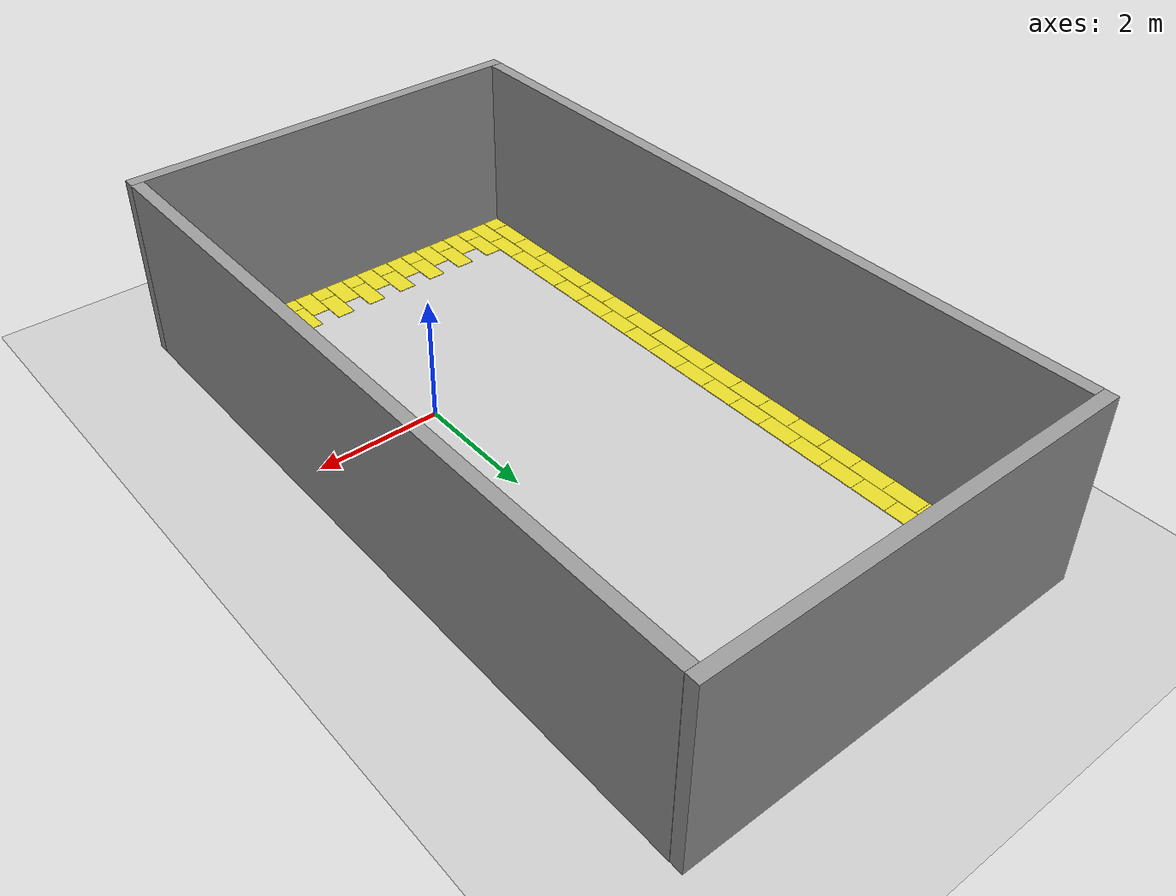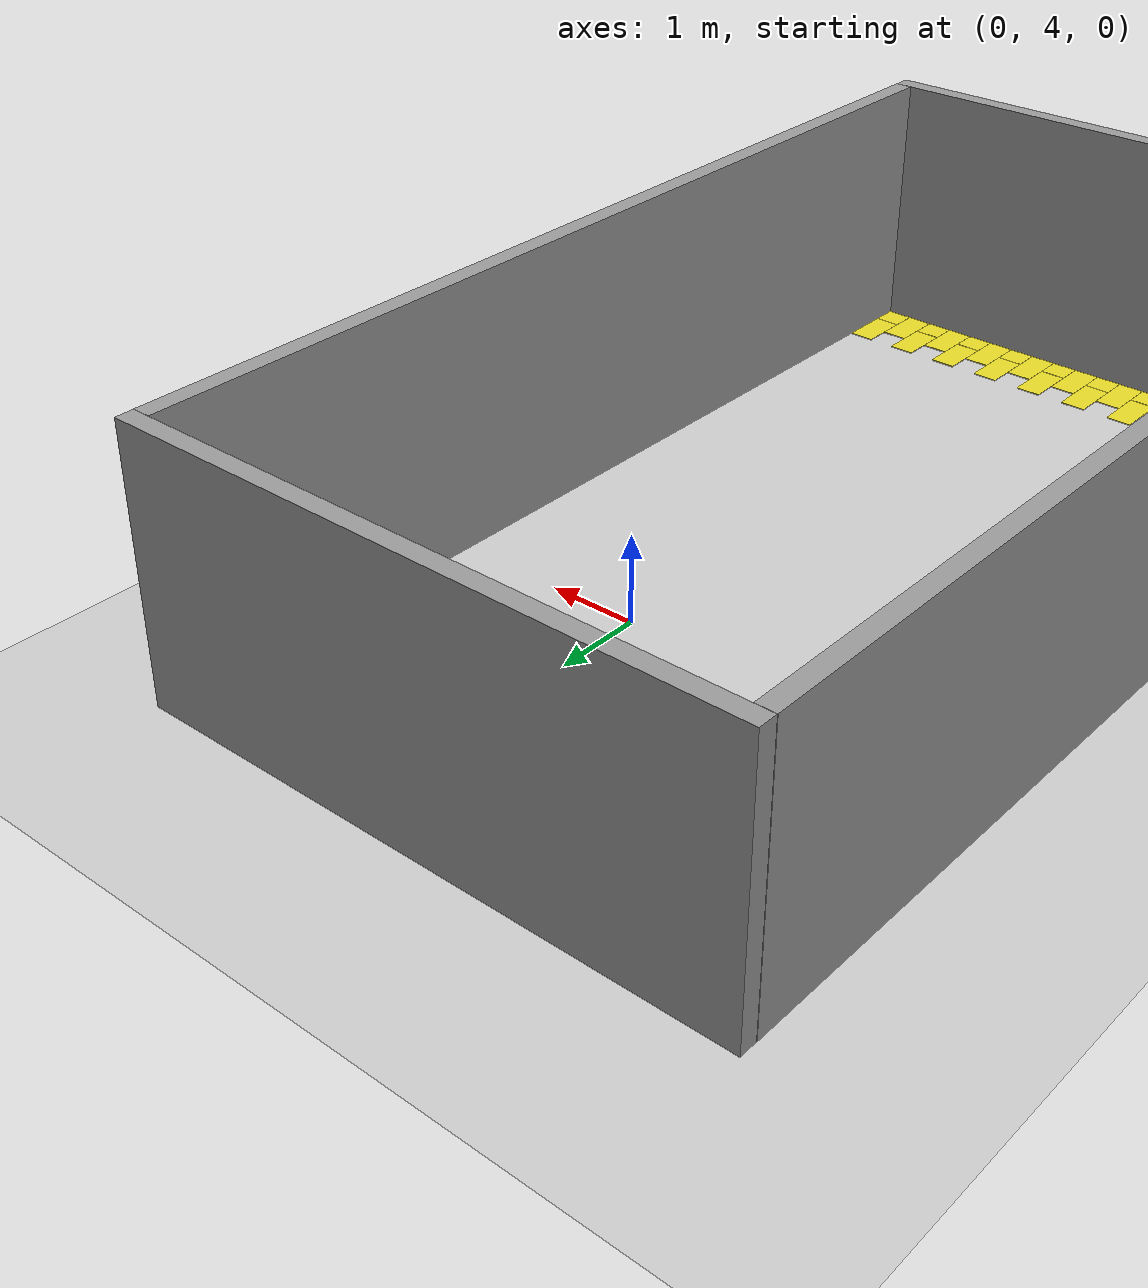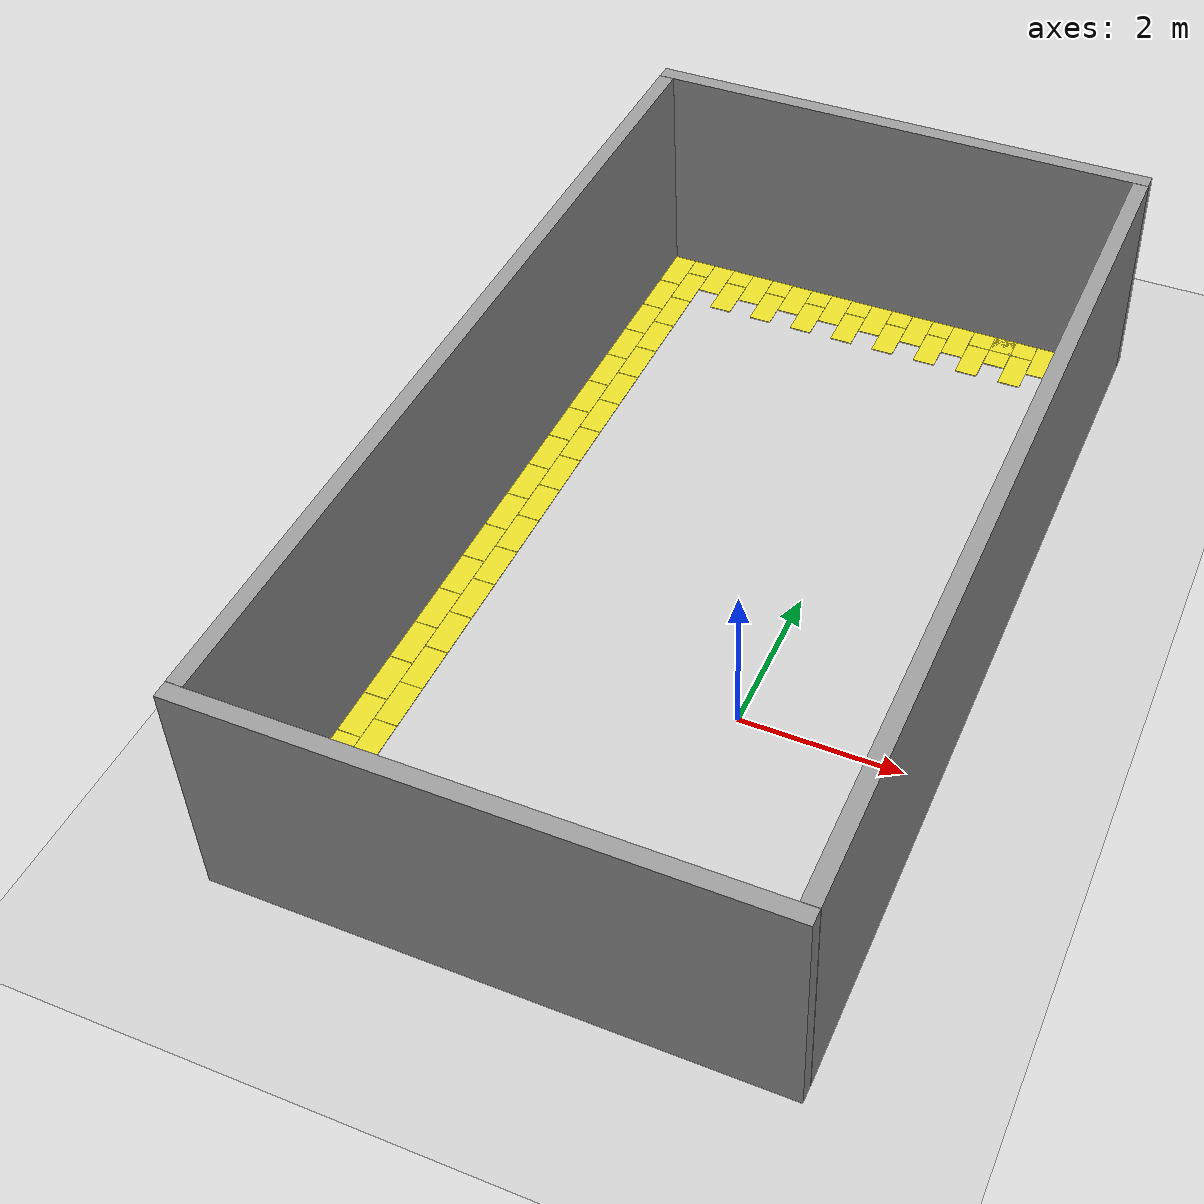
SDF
<sdf version="1.7">
 <world name="world_2">
  <shadows>false</shadows>
  <include><uri>model://sun</uri></include>
  <include><uri>model://ground_plane</uri></include>
  <include><pose>-4 -4 0 0 0 0</pose><uri>model://room_Yellow_60*30_noshadow_notexture_halb</uri></include>
 </world>
</sdf>

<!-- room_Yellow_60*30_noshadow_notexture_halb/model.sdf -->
<sdf version='1.7'>
<model  name='room_Yellow_60*30_noshadow_notexture_noshadow_notexture_halb'>
   <include><name>1</name><uri>model://Yellow_60*30_noshadow_notexture</uri><pose>0 0.603 0.005 0 0 0</pose></include>
   <include><name>2</name><uri>model://Yellow_60*30_noshadow_notexture</uri><pose>0 1.206 0.005 0 0 0</pose></include>
   <include><name>3</name><uri>model://Yellow_60*30_noshadow_notexture</uri><pose>0 1.809 0.005 0 0 0</pose></include>
   <include><name>4</name><uri>model://Yellow_60*30_noshadow_notexture</uri><pose>0 2.412 0.005 0 0 0</pose></include>
   <include><name>5</name><uri>model://Yellow_60*30_noshadow_notexture</uri><pose>0 3.015 0.005 0 0 0</pose></include>
   <include><name>6</name><uri>model://Yellow_60*30_noshadow_notexture</uri><pose>0 3.618 0.005 0 0 0</pose></include>
   <include><name>7</name><uri>model://Yellow_60*30_noshadow_notexture</uri><pose>0 4.221 0.005 0 0 0</pose></include>
   <include><name>8</name><uri>model://Yellow_60*30_noshadow_notexture</uri><pose>0 4.824 0.005 0 0 0</pose></include>
   <include><name>9</name><uri>model://Yellow_60*30_noshadow_notexture</uri><pose>0 5.427 0.005 0 0 0</pose></include>
   <include><name>10</name><uri>model://Yellow_60*30_noshadow_notexture</uri><pose>0 6.03 0.005 0 0 0</pose></include>
   <include><name>11</name><uri>model://Yellow_60*30_noshadow_notexture</uri><pose>0 6.633 0.005 0 0 0</pose></include>
   <include><name>12</name><uri>model://Yellow_60*30_noshadow_notexture</uri><pose>0 7.236 0.005 0 0 0</pose></include>
   <include><name>13</name><uri>model://Yellow_60*30_noshadow_notexture</uri><pose>0 7.839 0.005 0 0 0</pose></include>
   <include><name>14</name><uri>model://Yellow_60*30_noshadow_notexture</uri><pose>0 8.442 0.005 0 0 0</pose></include>
   <include><name>15</name><uri>model://Yellow_60*30_noshadow_notexture</uri><pose>0 9.045 0.005 0 0 0</pose></include>
   <include><name>16</name><uri>model://Yellow_60*30_noshadow_notexture</uri><pose>0 9.648 0.005 0 0 0</pose></include>
   <include><name>17</name><uri>model://Yellow_60*30_noshadow_notexture</uri><pose>0 10.251 0.005 0 0 0</pose></include>
   <include><name>18</name><uri>model://Yellow_60*30_noshadow_notexture</uri><pose>0 10.854 0.005 0 0 0</pose></include>
   <include><name>19</name><uri>model://Yellow_60*30_noshadow_notexture</uri><pose>0 11.457 0.005 0 0 0</pose></include>
   <include><name>21</name><uri>model://Yellow_60*30_noshadow_notexture</uri><pose>0.303 0.3015 0.005 0 0 0</pose></include>
   <include><name>22</name><uri>model://Yellow_60*30_noshadow_notexture</uri><pose>0.303 0.9045 0.005 0 0 0</pose></include>
   <include><name>23</name><uri>model://Yellow_60*30_noshadow_notexture</uri><pose>0.303 1.5075 0.005 0 0 0</pose></include>
   <include><name>24</name><uri>model://Yellow_60*30_noshadow_notexture</uri><pose>0.303 2.1105 0.005 0 0 0</pose></include>
   <include><name>25</name><uri>model://Yellow_60*30_noshadow_notexture</uri><pose>0.303 2.7135 0.005 0 0 0</pose></include>
   <include><name>26</name><uri>model://Yellow_60*30_noshadow_notexture</uri><pose>0.303 3.3165 0.005 0 0 0</pose></include>
   <include><name>27</name><uri>model://Yellow_60*30_noshadow_notexture</uri><pose>0.303 3.9195 0.005 0 0 0</pose></include>
   <include><name>28</name><uri>model://Yellow_60*30_noshadow_notexture</uri><pose>0.303 4.5225 0.005 0 0 0</pose></include>
   <include><name>29</name><uri>model://Yellow_60*30_noshadow_notexture</uri><pose>0.303 5.1255 0.005 0 0 0</pose></include>
   <include><name>30</name><uri>model://Yellow_60*30_noshadow_notexture</uri><pose>0.303 5.7285 0.005 0 0 0</pose></include>
   <include><name>31</name><uri>model://Yellow_60*30_noshadow_notexture</uri><pose>0.303 6.3315 0.005 0 0 0</pose></include>
   <include><name>32</name><uri>model://Yellow_60*30_noshadow_notexture</uri><pose>0.303 6.9345 0.005 0 0 0</pose></include>
   <include><name>33</name><uri>model://Yellow_60*30_noshadow_notexture</uri><pose>0.303 7.5375 0.005 0 0 0</pose></include>
   <include><name>34</name><uri>model://Yellow_60*30_noshadow_notexture</uri><pose>0.303 8.1405 0.005 0 0 0</pose></include>
   <include><name>35</name><uri>model://Yellow_60*30_noshadow_notexture</uri><pose>0.303 8.7435 0.005 0 0 0</pose></include>
   <include><name>36</name><uri>model://Yellow_60*30_noshadow_notexture</uri><pose>0.303 9.3465 0.005 0 0 0</pose></include>
   <include><name>37</name><uri>model://Yellow_60*30_noshadow_notexture</uri><pose>0.303 9.9495 0.005 0 0 0</pose></include>
   <include><name>38</name><uri>model://Yellow_60*30_noshadow_notexture</uri><pose>0.303 10.5525 0.005 0 0 0</pose></include>
   <include><name>39</name><uri>model://Yellow_60*30_noshadow_notexture</uri><pose>0.303 11.1555 0.005 0 0 0</pose></include>
   <include><name>40</name><uri>model://Yellow_60*30_noshadow_notexture</uri><pose>0.606 0.603 0.005 0 0 0</pose></include>
   <include><name>41</name><uri>model://Yellow_60*30_noshadow_notexture</uri><pose>0.909 0.3015 0.005 0 0 0</pose></include>
   <include><name>42</name><uri>model://Yellow_60*30_noshadow_notexture</uri><pose>1.212 0.603 0.005 0 0 0</pose></include>
   <include><name>43</name><uri>model://Yellow_60*30_noshadow_notexture</uri><pose>1.515 0.3015 0.005 0 0 0</pose></include>
   <include><name>44</name><uri>model://Yellow_60*30_noshadow_notexture</uri><pose>1.818 0.603 0.005 0 0 0</pose></include>
   <include><name>45</name><uri>model://Yellow_60*30_noshadow_notexture</uri><pose>2.121 0.3015 0.005 0 0 0</pose></include>
   <include><name>46</name><uri>model://Yellow_60*30_noshadow_notexture</uri><pose>2.424 0.603 0.005 0 0 0</pose></include>
   <include><name>47</name><uri>model://Yellow_60*30_noshadow_notexture</uri><pose>2.727 0.3015 0.005 0 0 0</pose></include>
   <include><name>48</name><uri>model://Yellow_60*30_noshadow_notexture</uri><pose>3.03 0.603 0.005 0 0 0</pose></include>
   <include><name>49</name><uri>model://Yellow_60*30_noshadow_notexture</uri><pose>3.333 0.3015 0.005 0 0 0</pose></include>
   <include><name>50</name><uri>model://Yellow_60*30_noshadow_notexture</uri><pose>3.636 0.603 0.005 0 0 0</pose></include>
   <include><name>51</name><uri>model://Yellow_60*30_noshadow_notexture</uri><pose>3.939 0.3015 0.005 0 0 0</pose></include>
   <include><name>52</name><uri>model://Yellow_60*30_noshadow_notexture</uri><pose>4.242 0.603 0.005 0 0 0</pose></include>
   <include><name>53</name><uri>model://Yellow_60*30_noshadow_notexture</uri><pose>4.545 0.3015 0.005 0 0 0</pose></include>
   <include><name>54</name><uri>model://Yellow_60*30_noshadow_notexture</uri><pose>4.848 0.603 0.005 0 0 0</pose></include>
   <include><name>55</name><uri>model://Yellow_60*30_noshadow_notexture</uri><pose>5.151 0.3015 0.005 0 0 0</pose></include>
   <include><name>56</name><uri>model://Yellow_60*30_noshadow_notexture</uri><pose>5.454 0.603 0.005 0 0 0</pose></include>
   <include><name>57</name><uri>model://Yellow_60*30_noshadow_notexture</uri><pose>5.757 0.3015 0.005 0 0 0</pose></include>
   <include><name>58</name><uri>model://Yellow_60*30_noshadow_notexture</uri><pose>6.06 0.603 0.005 0 0 0</pose></include>
   <include><name>59</name><uri>model://Yellow_60*30_noshadow_notexture</uri><pose>0.606 11.457 0.005 0 0 0</pose></include>
   <include><name>60</name><uri>model://Yellow_60*30_noshadow_notexture</uri><pose>0.909 11.1555 0.005 0 0 0</pose></include>
   <include><name>61</name><uri>model://Yellow_60*30_noshadow_notexture</uri><pose>1.212 11.457 0.005 0 0 0</pose></include>
   <include><name>62</name><uri>model://Yellow_60*30_noshadow_notexture</uri><pose>1.515 11.1555 0.005 0 0 0</pose></include>
   <include><name>63</name><uri>model://Yellow_60*30_noshadow_notexture</uri><pose>1.818 11.457 0.005 0 0 0</pose></include>
   <include><name>64</name><uri>model://Yellow_60*30_noshadow_notexture</uri><pose>2.121 11.1555 0.005 0 0 0</pose></include>
   <include><name>65</name><uri>model://Yellow_60*30_noshadow_notexture</uri><pose>2.424 11.457 0.005 0 0 0</pose></include>
   <include><name>66</name><uri>model://Yellow_60*30_noshadow_notexture</uri><pose>2.727 11.1555 0.005 0 0 0</pose></include>
   <include><name>67</name><uri>model://Yellow_60*30_noshadow_notexture</uri><pose>3.03 11.457 0.005 0 0 0</pose></include>
   <include><name>68</name><uri>model://Yellow_60*30_noshadow_notexture</uri><pose>3.333 11.1555 0.005 0 0 0</pose></include>
   <include><name>69</name><uri>model://Yellow_60*30_noshadow_notexture</uri><pose>3.636 11.457 0.005 0 0 0</pose></include>
   <include><name>70</name><uri>model://Yellow_60*30_noshadow_notexture</uri><pose>3.939 11.1555 0.005 0 0 0</pose></include>
   <include><name>71</name><uri>model://Yellow_60*30_noshadow_notexture</uri><pose>4.242 11.457 0.005 0 0 0</pose></include>
   <include><name>72</name><uri>model://Yellow_60*30_noshadow_notexture</uri><pose>4.545 11.1555 0.005 0 0 0</pose></include>
   <include><name>73</name><uri>model://Yellow_60*30_noshadow_notexture</uri><pose>4.848 11.457 0.005 0 0 0</pose></include>
   <include><name>74</name><uri>model://Yellow_60*30_noshadow_notexture</uri><pose>5.151 11.1555 0.005 0 0 0</pose></include>
   <include><name>75</name><uri>model://Yellow_60*30_noshadow_notexture</uri><pose>5.454 11.457 0.005 0 0 0</pose></include>
   <include><name>76</name><uri>model://Yellow_60*30_noshadow_notexture</uri><pose>5.757 11.1555 0.005 0 0 0</pose></include>
   <include><name>77</name><uri>model://Yellow_60*30_noshadow_notexture</uri><pose>6.06 11.457 0.005 0 0 0</pose></include>
   <include><name>78</name><uri>model://Yellow_30*29.85_noshadow_notexture</uri><pose>0 0.15075 0.005 0 0 0</pose></include>
   <include><name>79</name><uri>model://Yellow_30*29.85_noshadow_notexture</uri><pose>0.606 0.15075 0.005 0 0 0</pose></include>
   <include><name>80</name><uri>model://Yellow_30*29.85_noshadow_notexture</uri><pose>1.212 0.15075 0.005 0 0 0</pose></include>
   <include><name>81</name><uri>model://Yellow_30*29.85_noshadow_notexture</uri><pose>1.818 0.15075 0.005 0 0 0</pose></include>
   <include><name>82</name><uri>model://Yellow_30*29.85_noshadow_notexture</uri><pose>2.424 0.15075 0.005 0 0 0</pose></include>
   <include><name>83</name><uri>model://Yellow_30*29.85_noshadow_notexture</uri><pose>3.03 0.15075 0.005 0 0 0</pose></include>
   <include><name>84</name><uri>model://Yellow_30*29.85_noshadow_notexture</uri><pose>3.636 0.15075 0.005 0 0 0</pose></include>
   <include><name>85</name><uri>model://Yellow_30*29.85_noshadow_notexture</uri><pose>4.242 0.15075 0.005 0 0 0</pose></include>
   <include><name>86</name><uri>model://Yellow_30*29.85_noshadow_notexture</uri><pose>4.848 0.15075 0.005 0 0 0</pose></include>
   <include><name>87</name><uri>model://Yellow_30*29.85_noshadow_notexture</uri><pose>5.454 0.15075 0.005 0 0 0</pose></include>
   <include><name>88</name><uri>model://Yellow_30*29.85_noshadow_notexture</uri><pose>6.06 0.15075 0.005 0 0 0</pose></include>
   <include><name>89</name><uri>model://Yellow_30*29.85_noshadow_notexture</uri><pose>0.303 11.60775 0.005 0 0 0</pose></include>
   <include><name>90</name><uri>model://Yellow_30*29.85_noshadow_notexture</uri><pose>0.909 11.60775 0.005 0 0 0</pose></include>
   <include><name>91</name><uri>model://Yellow_30*29.85_noshadow_notexture</uri><pose>1.515 11.60775 0.005 0 0 0</pose></include>
   <include><name>92</name><uri>model://Yellow_30*29.85_noshadow_notexture</uri><pose>2.121 11.60775 0.005 0 0 0</pose></include>
   <include><name>93</name><uri>model://Yellow_30*29.85_noshadow_notexture</uri><pose>2.727 11.60775 0.005 0 0 0</pose></include>
   <include><name>94</name><uri>model://Yellow_30*29.85_noshadow_notexture</uri><pose>3.333 11.60775 0.005 0 0 0</pose></include>
   <include><name>95</name><uri>model://Yellow_30*29.85_noshadow_notexture</uri><pose>3.939 11.60775 0.005 0 0 0</pose></include>
   <include><name>96</name><uri>model://Yellow_30*29.85_noshadow_notexture</uri><pose>4.848 11.60775 0.005 0 0 0</pose></include>
   <include><name>97</name><uri>model://Yellow_30*29.85_noshadow_notexture</uri><pose>4.545 11.60775 0.005 0 0 0</pose></include>
   <include><name>98</name><uri>model://Yellow_30*29.85_noshadow_notexture</uri><pose>5.151 11.60775 0.005 0 0 0</pose></include>
   <include><name>99</name><uri>model://Yellow_30*29.85_noshadow_notexture</uri><pose>5.757 11.60775 0.005 0 0 0</pose></include>

   <include><name>100</name><uri>model://wall_03</uri><pose>3.03 -0.1015 0.005 0 0 0</pose></include>
   <include><name>101</name><uri>model://wall_03</uri><pose>3.03 11.86 0.005 0 0 0</pose></include>
   <include><name>102</name><uri>model://wall_04</uri><pose>-0.253 5.87925 0.005 0 0 0</pose></include>
   <include><name>103</name><uri>model://wall_04</uri><pose>6.313 5.87925 0.005 0 0 0</pose></include>

    <static>1</static>
    <allow_auto_disable>1</allow_auto_disable>
</model>
</sdf>

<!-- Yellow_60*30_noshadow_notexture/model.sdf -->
<sdf version='1.7'>
  <model name='Yellow_60*30_noshadow_notexture'>
    <link name='link_0'>
      <inertial>
        <mass>7.2</mass>
        <inertia>
          <ixx>0.21606</ixx>
          <ixy>0</ixy>
          <ixz>0</ixz>
          <iyy>0.21606</iyy>
          <iyz>0</iyz>
          <izz>0.432</izz>
        </inertia>
        <pose>0 0 0 0 -0 0</pose>
      </inertial>
      <pose>0 0 0 0 -0 0</pose>
      <gravity>1</gravity>
      <self_collide>0</self_collide>
      <kinematic>0</kinematic>
      <enable_wind>0</enable_wind>
      <visual name='visual'>
        <pose>0 0 0 0 -0 0</pose>
        <geometry>
          <box>
            <size>0.3 0.6 0.01</size>
          </box>
        </geometry>
        <material>
          <lighting>1</lighting>
          <script>
            <uri>file://media/materials/scripts/gazebo.material</uri>
            <name>Gazebo/Yellow</name>
          </script>
          <shader type='pixel'>
            <normal_map>__default__</normal_map>
          </shader>
          <ambient>1 1 0 1</ambient>
          <diffuse>1 1 0 1</diffuse>
          <specular>0.01 0.01 0.01 1</specular>
          <emissive>0 0 0 1</emissive>
        </material>
        <transparency>0</transparency>
        <cast_shadows>0</cast_shadows>
      </visual>
      <collision name='collision'>
        <laser_retro>0</laser_retro>
        <max_contacts>10</max_contacts>
        <pose>0 0 0 0 -0 0</pose>
        <geometry>
          <box>
            <size>0.6 0.6 0.01</size>
          </box>
        </geometry>
        <surface>
          <friction>
            <ode>
              <mu>1</mu>
              <mu2>1</mu2>
              <fdir1>0 0 0</fdir1>
              <slip1>0</slip1>
              <slip2>0</slip2>
            </ode>
            <torsional>
              <coefficient>1</coefficient>
              <patch_radius>0</patch_radius>
              <surface_radius>0</surface_radius>
              <use_patch_radius>1</use_patch_radius>
              <ode>
                <slip>0</slip>
              </ode>
            </torsional>
          </friction>
          <bounce>
            <restitution_coefficient>0</restitution_coefficient>
            <threshold>1e+06</threshold>
          </bounce>
          <contact>
            <collide_without_contact>0</collide_without_contact>
            <collide_without_contact_bitmask>1</collide_without_contact_bitmask>
            <collide_bitmask>1</collide_bitmask>
            <ode>
              <soft_cfm>0</soft_cfm>
              <soft_erp>0.2</soft_erp>
              <kp>1e+13</kp>
              <kd>1</kd>
              <max_vel>0.01</max_vel>
              <min_depth>0</min_depth>
            </ode>
            <bullet>
              <split_impulse>1</split_impulse>
              <split_impulse_penetration_threshold>-0.01</split_impulse_penetration_threshold>
              <soft_cfm>0</soft_cfm>
              <soft_erp>0.2</soft_erp>
              <kp>1e+13</kp>
              <kd>1</kd>
            </bullet>
          </contact>
        </surface>
      </collision>
    </link>
    <static>1</static>
    <allow_auto_disable>1</allow_auto_disable>
  </model>
</sdf>

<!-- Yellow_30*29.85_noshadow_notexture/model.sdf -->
<sdf version='1.7'>
  <model name='Yellow_30*29.85_noshadow_notexture'>
    <link name='link_0'>
      <inertial>
        <mass>7.2</mass>
        <inertia>
          <ixx>0.21606</ixx>
          <ixy>0</ixy>
          <ixz>0</ixz>
          <iyy>0.21606</iyy>
          <iyz>0</iyz>
          <izz>0.432</izz>
        </inertia>
        <pose>0 0 0 0 -0 0</pose>
      </inertial>
      <pose>0 0 0 0 -0 0</pose>
      <gravity>1</gravity>
      <self_collide>0</self_collide>
      <kinematic>0</kinematic>
      <enable_wind>0</enable_wind>
      <visual name='visual'>
        <pose>0 0 0 0 -0 0</pose>
        <geometry>
          <box>
            <size>0.3 0.2985 0.01</size>
          </box>
        </geometry>
        <material>
          <lighting>1</lighting>
          <script>
            <uri>file://media/materials/scripts/gazebo.material</uri>
            <name>Gazebo/Yellow</name>
          </script>
          <shader type='pixel'>
            <normal_map>__default__</normal_map>
          </shader>
          <ambient>1 1 0 1</ambient>
          <diffuse>1 1 0 1</diffuse>
          <specular>0.01 0.01 0.01 1</specular>
          <emissive>0 0 0 1</emissive>
        </material>
        <transparency>0</transparency>
        <cast_shadows>0</cast_shadows>
      </visual>
      <collision name='collision'>
        <laser_retro>0</laser_retro>
        <max_contacts>10</max_contacts>
        <pose>0 0 0 0 -0 0</pose>
        <geometry>
          <box>
            <size>0.6 0.6 0.01</size>
          </box>
        </geometry>
        <surface>
          <friction>
            <ode>
              <mu>1</mu>
              <mu2>1</mu2>
              <fdir1>0 0 0</fdir1>
              <slip1>0</slip1>
              <slip2>0</slip2>
            </ode>
            <torsional>
              <coefficient>1</coefficient>
              <patch_radius>0</patch_radius>
              <surface_radius>0</surface_radius>
              <use_patch_radius>1</use_patch_radius>
              <ode>
                <slip>0</slip>
              </ode>
            </torsional>
          </friction>
          <bounce>
            <restitution_coefficient>0</restitution_coefficient>
            <threshold>1e+06</threshold>
          </bounce>
          <contact>
            <collide_without_contact>0</collide_without_contact>
            <collide_without_contact_bitmask>1</collide_without_contact_bitmask>
            <collide_bitmask>1</collide_bitmask>
            <ode>
              <soft_cfm>0</soft_cfm>
              <soft_erp>0.2</soft_erp>
              <kp>1e+13</kp>
              <kd>1</kd>
              <max_vel>0.01</max_vel>
              <min_depth>0</min_depth>
            </ode>
            <bullet>
              <split_impulse>1</split_impulse>
              <split_impulse_penetration_threshold>-0.01</split_impulse_penetration_threshold>
              <soft_cfm>0</soft_cfm>
              <soft_erp>0.2</soft_erp>
              <kp>1e+13</kp>
              <kd>1</kd>
            </bullet>
          </contact>
        </surface>
      </collision>
    </link>
    <static>1</static>
    <allow_auto_disable>1</allow_auto_disable>
  </model>
</sdf>

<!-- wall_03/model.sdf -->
<sdf version='1.7'>
  <model name='wall_03'>
    <pose>0 0 0 0 -0 0</pose>
    <link name='Wall_10'>
      <collision name='Wall_10_Collision'>
        <geometry>
          <box>
            <size>6.76 0.2 3</size>
          </box>
        </geometry>
        <pose>0 0 1.5 0 -0 0</pose>
      </collision>
      <visual name='Wall_10_Visual'>
        <cast_shadows>false</cast_shadows>
        <pose>0 0 1.5 0 -0 0</pose>
        <geometry>
          <box>
            <size>6.76 0.2 3</size>
          </box>
        </geometry>
        <material>
          <script>
            <uri>file://media/materials/scripts/gazebo.material</uri>
            <name>Gazebo/Grey</name>
          </script>
          <ambient>1 1 1 1</ambient>
        </material>
        <meta>
          <layer>0</layer>
        </meta>
      </visual>
    </link>

    <static>1</static>
  </model>
</sdf>

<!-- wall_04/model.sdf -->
<sdf version='1.7'>
  <model name='wall_04'>
    <pose>0 0 0 0 -0 0</pose>
    <link name='Wall_12'>
      <collision name='Wall_12_Collision'>
        <geometry>
          <box>
            <size>11.7555 0.2 3</size>
          </box>
        </geometry>
        <pose>0 0 1.5 0 -0 0</pose>
      </collision>
      <visual name='Wall_12_Visual'>
        <cast_shadows>false</cast_shadows>
        <pose>0 0 1.5 0 -0 0</pose>
        <geometry>
          <box>
            <size>11.7555 0.2 3</size>
          </box>
        </geometry>
        <material>
          <script>
            <uri>file://media/materials/scripts/gazebo.material</uri>
            <name>Gazebo/Grey</name>
          </script>
          <ambient>1 1 1 1</ambient>
        </material>
        <meta>
          <layer>0</layer>
        </meta>
      </visual>
      <pose>0 0 0 0 -0 -1.5708</pose>
    </link>

    <static>1</static>
  </model>
</sdf>
